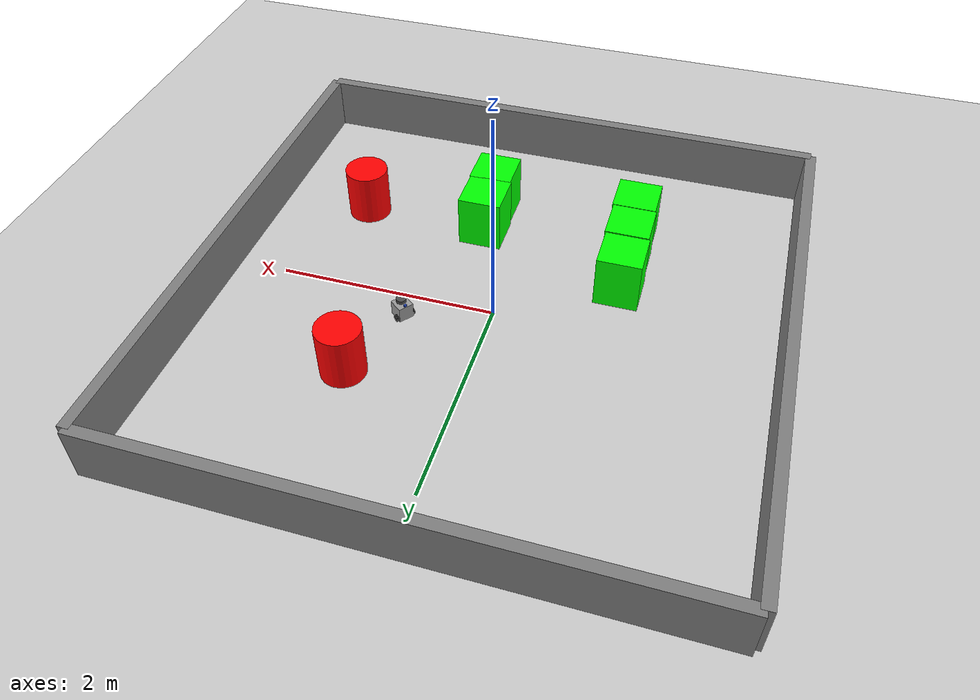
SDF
<sdf version="1.7">
 <world name="slam_world">
  <physics type="ode">
   <max_step_size>0.001</max_step_size>
   <real_time_factor>1</real_time_factor>
   <real_time_update_rate>1000</real_time_update_rate>
  </physics>
  <model name="ground_plane">
   <static>1</static>
   <link name="link">
    <collision name="collision">
     <geometry><plane><normal>0 0 1</normal><size>100 100</size></plane></geometry>
     <surface>
      <contact><collide_bitmask>65535</collide_bitmask></contact>
      <friction><ode><mu>100</mu><mu2>50</mu2></ode></friction>
     </surface>
    </collision>
    <visual name="visual">
     <cast_shadows>0</cast_shadows>
     <geometry><plane><normal>0 0 1</normal><size>100 100</size></plane></geometry>
     <material>
      <script><uri>file://media/materials/scripts/gazebo.material</uri><name>Gazebo/Grey</name></script>
     </material>
    </visual>
   </link>
  </model>
  <light name="sun" type="directional">
   <pose>0 0 10 0 -0 0</pose>
   <diffuse>0.8 0.8 0.8 1</diffuse>
   <specular>0.2 0.2 0.2 1</specular>
   <attenuation>
    <range>1000</range>
    <constant>0.9</constant>
    <linear>0.01</linear>
    <quadratic>0.001</quadratic>
   </attenuation>
   <direction>-0.5 0.1 -0.9</direction>
   <spot><inner_angle>0</inner_angle><outer_angle>0</outer_angle><falloff>0</falloff></spot>
  </light>
  <model name="north_wall">
   <static>1</static>
   <pose>0 2.5 0.25 0 -0 0</pose>
   <link name="link">
    <collision name="collision"><geometry><box><size>5 0.1 0.5</size></box></geometry></collision>
    <visual name="visual">
     <geometry><box><size>5 0.1 0.5</size></box></geometry>
     <material><ambient>0.5 0.5 0.5 1</ambient></material>
    </visual>
   </link>
  </model>
  <model name="south_wall">
   <static>1</static>
   <pose>0 -2.5 0.25 0 -0 0</pose>
   <link name="link">
    <collision name="collision"><geometry><box><size>5 0.1 0.5</size></box></geometry></collision>
    <visual name="visual">
     <geometry><box><size>5 0.1 0.5</size></box></geometry>
     <material><ambient>0.5 0.5 0.5 1</ambient></material>
    </visual>
   </link>
  </model>
  <model name="east_wall">
   <static>1</static>
   <pose>2.5 0 0.25 0 -0 0</pose>
   <link name="link">
    <collision name="collision"><geometry><box><size>0.1 5 0.5</size></box></geometry></collision>
    <visual name="visual">
     <geometry><box><size>0.1 5 0.5</size></box></geometry>
     <material><ambient>0.5 0.5 0.5 1</ambient></material>
    </visual>
   </link>
  </model>
  <model name="west_wall">
   <static>1</static>
   <pose>-2.5 0 0.25 0 -0 0</pose>
   <link name="link">
    <collision name="collision"><geometry><box><size>0.1 5 0.5</size></box></geometry></collision>
    <visual name="visual">
     <geometry><box><size>0.1 5 0.5</size></box></geometry>
     <material><ambient>0.5 0.5 0.5 1</ambient></material>
    </visual>
   </link>
  </model>
  <model name="cylinder1">
   <pose>1 1 0.25 0 -0 0</pose>
   <static>1</static>
   <link name="link">
    <collision name="collision">
     <geometry><cylinder><radius>0.2</radius><length>0.5</length></cylinder></geometry>
    </collision>
    <visual name="visual">
     <geometry><cylinder><radius>0.2</radius><length>0.5</length></cylinder></geometry>
     <material><ambient>1 0 0 1</ambient></material>
    </visual>
   </link>
  </model>
  <model name="box1">
   <pose>-1 -1 0.25 0 -0 0</pose>
   <static>1</static>
   <link name="link">
    <collision name="collision"><geometry><box><size>0.4 0.4 0.5</size></box></geometry></collision>
    <visual name="visual">
     <geometry><box><size>0.4 0.4 0.5</size></box></geometry>
     <material><ambient>0 1 0 1</ambient></material>
    </visual>
   </link>
  </model>
  <gravity>0 0 -9.8</gravity>
  <magnetic_field>6e-06 2.3e-05 -4.2e-05</magnetic_field>
  <atmosphere type="adiabatic"/>
  <scene><ambient>0.4 0.4 0.4 1</ambient><background>0.7 0.7 0.7 1</background><shadows>1</shadows></scene>
  <audio><device>default</device></audio>
  <spherical_coordinates>
   <surface_model>EARTH_WGS84</surface_model>
   <latitude_deg>0</latitude_deg>
   <longitude_deg>0</longitude_deg>
   <elevation>0</elevation>
   <heading_deg>0</heading_deg>
  </spherical_coordinates>
  <model name="turtlebot">
   <link name="base_footprint">
    <inertial>
     <pose>-0.03316 0 0.030872 0 -0 0</pose>
     <mass>0.945735</mass>
     <inertia>
      <ixx>0.00729604</ixx>
      <ixy>-1.22941e-05</ixy>
      <ixz>0.000158836</ixz>
      <iyy>0.0072246</iyy>
      <iyz>-5.01209e-06</iyz>
      <izz>0.00412806</izz>
     </inertia>
    </inertial>
    <collision name="base_footprint_fixed_joint_lump__base_link_collision">
     <pose>-0.032 0 0.08 0 -0 0</pose>
     <geometry><box><size>0.14 0.14 0.143</size></box></geometry>
     <surface><friction><ode><mu>0.5</mu><mu2>0.5</mu2></ode></friction></surface>
    </collision>
    <collision name="base_footprint_fixed_joint_lump__camera_link_collision_1">
     <pose>0.028 0 0.1615 0 -0 0</pose>
     <geometry><box><size>0.02 0.05 0.02</size></box></geometry>
    </collision>
    <collision name="base_footprint_fixed_joint_lump__caster_back_link_collision_2">
     <pose>-0.081 1e-06 0.005 -1.57 0 0</pose>
     <geometry><sphere><radius>0.005</radius></sphere></geometry>
     <surface><friction><ode><mu>0.1</mu><mu2>0.1</mu2></ode></friction></surface>
    </collision>
    <collision name="base_footprint_fixed_joint_lump__base_scan_collision_3">
     <pose>-0.025 0 0.1755 0 -0 0</pose>
     <geometry><cylinder><length>0.0315</length><radius>0.045</radius></cylinder></geometry>
    </collision>
    <visual name="base_footprint_fixed_joint_lump__base_link_visual">
     <pose>-0.032 0 0.08 0 -0 0</pose>
     <geometry><box><size>0.14 0.14 0.143</size></box></geometry>
     <material>
      <script><name>Gazebo/LighgGray</name><uri>file://media/materials/scripts/gazebo.material</uri></script>
     </material>
    </visual>
    <visual name="base_footprint_fixed_joint_lump__camera_link_visual_1">
     <pose>0.028 0 0.1615 0 -0 0</pose>
     <geometry><box><size>0.02 0.02 0.02</size></box></geometry>
     <material>
      <script><name>Gazebo/Blue</name><uri>file://media/materials/scripts/gazebo.material</uri></script>
     </material>
    </visual>
    <visual name="base_footprint_fixed_joint_lump__caster_back_link_visual_2">
     <pose>-0.081 1e-06 0.005 -1.57 0 0</pose>
     <geometry><sphere><radius>0.0075</radius></sphere></geometry>
     <material>
      <script><name>Gazebo/LightGray</name><uri>file://media/materials/scripts/gazebo.material</uri></script>
     </material>
    </visual>
    <visual name="base_footprint_fixed_joint_lump__base_scan_visual_3">
     <pose>-0.04 0 0.182 0 -0 0</pose>
     <geometry><cylinder><length>0.0315</length><radius>0.045</radius></cylinder></geometry>
     <material>
      <script><name>Gazebo/DarkGrey</name><uri>file://media/materials/scripts/gazebo.material</uri></script>
     </material>
    </visual>
    <sensor name="camera" type="camera">
     <always_on>1</always_on>
     <visualize>1</visualize>
     <update_rate>30</update_rate>
     <camera>
      <horizontal_fov>1.047</horizontal_fov>
      <image><width>640</width><height>480</height><format>R8G8B8</format></image>
      <clip><near>0.05</near><far>8</far></clip>
     </camera>
     <plugin name="camera_controller" filename="libgazebo_ros_camera.so">
      <ros>
       <remapping>/camera/image_raw:=/image_raw</remapping>
       <remapping>/camera/camera_info:=/camera_info</remapping>
      </ros>
      <frame_name>camera_link</frame_name>
     </plugin>
     <pose>0.028 0 0.1615 0 -0 0</pose>
    </sensor>
    <sensor name="imu_sensor" type="imu">
     <always_on>1</always_on>
     <update_rate>200</update_rate>
     <imu>
      <angular_velocity>
       <x><noise type="gaussian"><mean>0</mean><stddev>0.0002</stddev></noise></x>
       <y><noise type="gaussian"><mean>0</mean><stddev>0.0002</stddev></noise></y>
       <z><noise type="gaussian"><mean>0</mean><stddev>0.0002</stddev></noise></z>
      </angular_velocity>
      <linear_acceleration>
       <x><noise type="gaussian"><mean>0</mean><stddev>0.017</stddev></noise></x>
       <y><noise type="gaussian"><mean>0</mean><stddev>0.017</stddev></noise></y>
       <z><noise type="gaussian"><mean>0</mean><stddev>0.017</stddev></noise></z>
      </linear_acceleration>
     </imu>
     <plugin name="imu_plugin" filename="libgazebo_ros_imu_sensor.so">
      <ros><remapping>~/out:=imu</remapping></ros>
      <frame_name>imu_link</frame_name>
     </plugin>
     <pose>-0.032 0 0.078 0 -0 0</pose>
    </sensor>
    <sensor name="laser" type="ray">
     <always_on>1</always_on>
     <visualize>1</visualize>
     <update_rate>10</update_rate>
     <ray>
      <scan>
       <horizontal>
        <samples>360</samples>
        <resolution>1</resolution>
        <min_angle>-3.14</min_angle>
        <max_angle>3.14</max_angle>
       </horizontal>
       <vertical><samples>1</samples><min_angle>0</min_angle><max_angle>0</max_angle></vertical>
      </scan>
      <range><min>0.12</min><max>3.5</max><resolution>0.015</resolution></range>
     </ray>
     <plugin name="laser_controller" filename="libgazebo_ros_ray_sensor.so">
      <ros><remapping>~/out:=scan</remapping></ros>
      <output_type>sensor_msgs/LaserScan</output_type>
      <frame_name>base_scan</frame_name>
     </plugin>
     <pose>-0.04 0 0.182 0 -0 0</pose>
    </sensor>
   </link>
   <joint name="wheel_left_joint" type="revolute">
    <pose relative_to="base_footprint">0 0.08 0.033 -1.57 0 0</pose>
    <parent>base_footprint</parent>
    <child>wheel_left_link</child>
    <axis>
     <xyz>0 0 1</xyz>
     <limit><lower>-1e+16</lower><upper>1e+16</upper></limit>
     <dynamics><spring_reference>0</spring_reference><spring_stiffness>0</spring_stiffness></dynamics>
    </axis>
   </joint>
   <link name="wheel_left_link">
    <pose relative_to="wheel_left_joint">0 0 0 0 -0 0</pose>
    <inertial>
     <mass>0.0284989</mass>
     <inertia>
      <ixx>1.11756e-05</ixx>
      <ixy>-4.23698e-11</ixy>
      <ixz>-5.93817e-09</ixz>
      <iyy>1.11924e-05</iyy>
      <iyz>-1.44001e-11</iyz>
      <izz>2.07126e-05</izz>
     </inertia>
    </inertial>
    <collision name="wheel_left_link_collision">
     <geometry><cylinder><length>0.018</length><radius>0.033</radius></cylinder></geometry>
     <surface><friction><ode><mu>1</mu><mu2>1</mu2></ode></friction></surface>
    </collision>
    <visual name="wheel_left_link_visual">
     <geometry><cylinder><length>0.018</length><radius>0.033</radius></cylinder></geometry>
     <material>
      <script><name>Gazebo/Black</name><uri>file://media/materials/scripts/gazebo.material</uri></script>
     </material>
    </visual>
   </link>
   <joint name="wheel_right_joint" type="revolute">
    <pose relative_to="base_footprint">0 -0.08 0.033 -1.57 0 0</pose>
    <parent>base_footprint</parent>
    <child>wheel_right_link</child>
    <axis>
     <xyz>0 0 1</xyz>
     <limit><lower>-1e+16</lower><upper>1e+16</upper></limit>
     <dynamics><spring_reference>0</spring_reference><spring_stiffness>0</spring_stiffness></dynamics>
    </axis>
   </joint>
   <link name="wheel_right_link">
    <pose relative_to="wheel_right_joint">0 0 0 0 -0 0</pose>
    <inertial>
     <mass>0.0284989</mass>
     <inertia>
      <ixx>1.11756e-05</ixx>
      <ixy>-4.23698e-11</ixy>
      <ixz>-5.93817e-09</ixz>
      <iyy>1.11924e-05</iyy>
      <iyz>-1.44001e-11</iyz>
      <izz>2.07126e-05</izz>
     </inertia>
    </inertial>
    <collision name="wheel_right_link_collision">
     <geometry><cylinder><length>0.018</length><radius>0.033</radius></cylinder></geometry>
     <surface><friction><ode><mu>1</mu><mu2>1</mu2></ode></friction></surface>
    </collision>
    <visual name="wheel_right_link_visual">
     <geometry><cylinder><length>0.018</length><radius>0.033</radius></cylinder></geometry>
     <material>
      <script><name>Gazebo/Black</name><uri>file://media/materials/scripts/gazebo.material</uri></script>
     </material>
    </visual>
   </link>
   <plugin name="joint_state_publisher" filename="libgazebo_ros_joint_state_publisher.so">
    <update_rate>50</update_rate>
    <joint_name>wheel_left_joint</joint_name>
    <joint_name>wheel_right_joint</joint_name>
   </plugin>
   <static>0</static>
   <plugin name="diff_drive" filename="libgazebo_ros_diff_drive.so">
    <update_rate>50</update_rate>
    <left_joint>wheel_left_joint</left_joint>
    <right_joint>wheel_right_joint</right_joint>
    <wheel_separation>0.160</wheel_separation>
    <wheel_diameter>0.066</wheel_diameter>
    <max_wheel_acceleration>1.0</max_wheel_acceleration>
    <topic>cmd_vel</topic>
    <odometry_topic>odom</odometry_topic>
    <publish_odom>1</publish_odom>
    <publish_odom_tf>1</publish_odom_tf>
    <frame_name>odom</frame_name>
    <child_frame_name>base_footprint</child_frame_name>
    <max_wheel_torque>10</max_wheel_torque>
   </plugin>
   <pose>0.731702 0.26581 3e-06 -1.1e-05 -4e-05 2.46346</pose>
  </model>
  <model name="box1_clone">
   <pose>-1.01144 -0.588435 0.25 0 -0 0</pose>
   <static>1</static>
   <link name="link">
    <collision name="collision"><geometry><box><size>0.4 0.4 0.5</size></box></geometry></collision>
    <visual name="visual">
     <geometry><box><size>0.4 0.4 0.5</size></box></geometry>
     <material><ambient>0 1 0 1</ambient></material>
    </visual>
   </link>
  </model>
  <model name="box1_clone_0">
   <pose>-0.989354 -1.4053 0.25 0 -0 0</pose>
   <static>1</static>
   <link name="link">
    <collision name="collision"><geometry><box><size>0.4 0.4 0.5</size></box></geometry></collision>
    <visual name="visual">
     <geometry><box><size>0.4 0.4 0.5</size></box></geometry>
     <material><ambient>0 1 0 1</ambient></material>
    </visual>
   </link>
  </model>
  <model name="box1_clone_0_clone">
   <pose>0.403159 -1.4459 0.25 0 -0 0</pose>
   <static>1</static>
   <link name="link">
    <collision name="collision"><geometry><box><size>0.4 0.4 0.5</size></box></geometry></collision>
    <visual name="visual">
     <geometry><box><size>0.4 0.4 0.5</size></box></geometry>
     <material><ambient>0 1 0 1</ambient></material>
    </visual>
   </link>
  </model>
  <model name="box1_clone_0_clone_0">
   <pose>0.391305 -1.05386 0.25 0 -0 0</pose>
   <static>1</static>
   <link name="link">
    <collision name="collision"><geometry><box><size>0.4 0.4 0.5</size></box></geometry></collision>
    <visual name="visual">
     <geometry><box><size>0.4 0.4 0.5</size></box></geometry>
     <material><ambient>0 1 0 1</ambient></material>
    </visual>
   </link>
  </model>
  <model name="cylinder1_clone">
   <pose>1.58735 -1.07087 0.25 0 -0 0</pose>
   <static>1</static>
   <link name="link">
    <collision name="collision">
     <geometry><cylinder><radius>0.2</radius><length>0.5</length></cylinder></geometry>
    </collision>
    <visual name="visual">
     <geometry><cylinder><radius>0.2</radius><length>0.5</length></cylinder></geometry>
     <material><ambient>1 0 0 1</ambient></material>
    </visual>
   </link>
  </model>
 </world>
</sdf>
